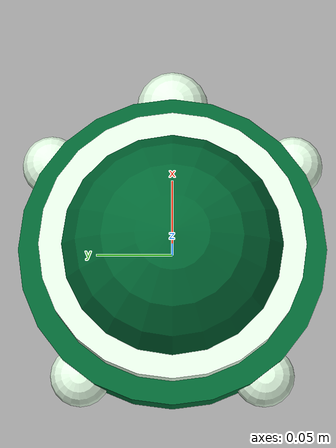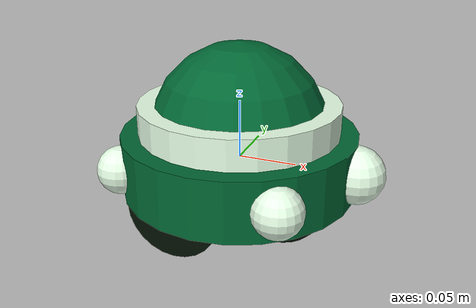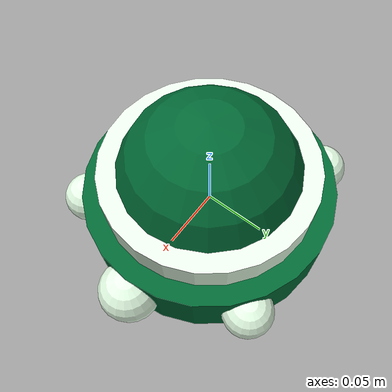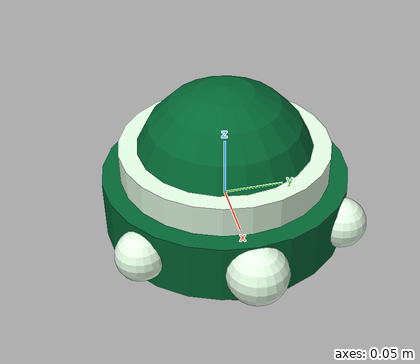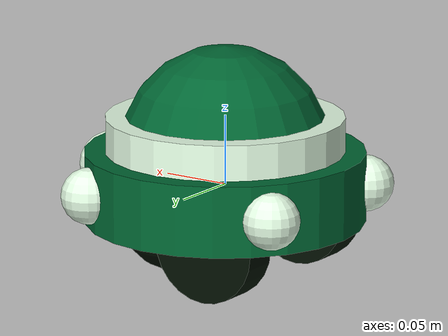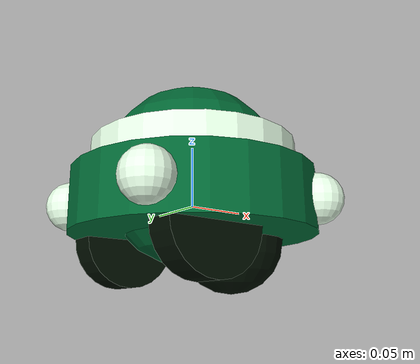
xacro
<?xml version="1.0"?>
<robot name="turtle" xmlns:xacro="http://ros.org/wiki/xacro">

	<!-- Свойства объектов -->

	<!-- Размеры -->

	<xacro:property name="base_radius" value="0.1" />
	<xacro:property name="base_height" value="0.05" />

	<xacro:property name="midbase_radius" value="0.085" />
	<xacro:property name="midbase_height" value="0.025" />

	<xacro:property name="upbase_radius" value="0.075" />

	<xacro:property name="head_radius" value="0.024" />

	<xacro:property name="limb_radius" value="0.02" />
	<xacro:property name="limb_close_off" value="0.06" />
	<xacro:property name="limb_far_off" value="0.08" />

	<xacro:property name="drive_radius" value="0.04" />
	<xacro:property name="drive_height" value="0.025" />
	<xacro:property name="drive_x_off" value="-0.03" />
	<xacro:property name="drive_y_off" value="0.058" />
	<xacro:property name="drive_z_off" value="-0.0246" />

	<xacro:property name="driven_radius" value="0.0446" />
	<xacro:property name="driven_x_off" value="0.04" />

	<!-- Цвета -->

	<material name="green">
		<color rgba="0 0.4 0.2 1"/>
	</material>
	<material name="dark_green">
		<color rgba="0 0.05 0 1"/>
	</material>
	<material name="light_green">
		<color rgba="0.9 1.0 0.9 1"/>
	</material>

	<!-- Joint'ы -->

	<xacro:macro name="joint" params="parent child type xyz rpy">
		<joint name="${parent}_${child}_joint" type="${type}">
			<parent link="${parent}_link"/>
			<child link="${child}_link"/>
			<origin xyz="${xyz}" rpy="${rpy}"/>
		</joint>
	</xacro:macro>

	<xacro:macro name="wheel_joint" params="parent child type xyz rpy axis">
		<joint name="${parent}_${child}_joint" type="${type}">
			<parent link="${parent}_link"/>
			<child link="${child}_link"/>
			<origin xyz="${xyz}" rpy="${rpy}"/>
			<axis xyz="${axis}"/>
		</joint>
	</xacro:macro>

	<!-- Link'и -->

	<xacro:macro name="cylinder_link" params="name radius length color mass">
		<link name="${name}_link">
			<visual>
				<geometry>
					<cylinder radius="${radius}" length="${length}"/>
				</geometry>
				<material name="${color}"/>
			</visual>
			<collision>
				<geometry>
					<cylinder radius="${radius}" length="${length}"/>
				</geometry>
			</collision>
			<inertial>
				<mass value="${mass}"/>
				<inertia ixx="${(mass/12)*((3*radius*radius)+(length*length))}"
						 ixy="0"
						 ixz="0"
						 iyy="${(mass/12)*((3*radius*radius)+(length*length))}"
						 iyz="0"
						 izz="${(mass/2)*(radius*radius)}"/>
			</inertial>
		</link>
	</xacro:macro>

	<xacro:macro name="sphere_link" params="name radius color mass">
		<link name="${name}_link">
			<visual>
				<geometry>
					<sphere radius="${radius}"/>
				</geometry>
				<material name="${color}"/>
			</visual>
			<collision>
				<geometry>
					<sphere radius="${radius}"/>
				</geometry>
			</collision>
			<inertial>
				<mass value="${mass}"/>
				<inertia ixx="${(2/5)*mass*(radius*radius)}"
						 ixy="0"
						 ixz="0"
						 iyy="${(2/5)*mass*(radius*radius)}"
						 iyz="0"
						 izz="${(2/5)*mass*(radius*radius)}"/>
			</inertial>
		</link>
	</xacro:macro>

	<!-- Объекты -->

	<!-- База -->

	<xacro:cylinder_link name="base"
						 radius="0.1" length="0.05"
						 color="green"
						 mass="5" />

	<!-- След от базы и связка с базой -->

	<link name="base_footprint_link"/>

	<xacro:joint parent="base" child="base_footprint"
				 type="fixed"
				 xyz="0 0 ${-((base_height/2)+driven_radius)}" rpy="0 0 0" />

	<!-- Межбаза и связка с базой -->

	<xacro:cylinder_link name="midbase"
						 radius="0.085" length="0.025"
						 color="light_green"
						 mass="3" />

	<xacro:joint parent="base" child="midbase"
				 type="fixed"
				 xyz="0 0 ${(base_height+midbase_height)/2}" rpy="0 0 0" />

	<!-- Надбаза и связка с базой -->

	<xacro:sphere_link name="upbase"
					   radius="${upbase_radius}"
					   color="green"
					   mass="3" />

	<xacro:joint parent="base" child="upbase"
				 type="fixed"
				 xyz="0 0 ${base_height/2}" rpy="0 0 0" />

	<!-- Голова базы и связка с базой -->

	<xacro:sphere_link name="head"
					   radius="${head_radius}"
					   color="light_green"
					   mass="0.5" />

	<xacro:joint parent="base" child="head"
				 type="fixed"
				 xyz="${base_radius} 0 0" rpy="0 0 0" />

	<!-- Лапки базы и связки -->

	<xacro:sphere_link name="right_hand"
					   radius="${limb_radius}"
					   color="light_green"
					   mass="0.25" />
	<xacro:sphere_link name="left_hand"
					   radius="${limb_radius}"
					   color="light_green"
					   mass="0.25" />
	<xacro:sphere_link name="right_leg"
					   radius="${limb_radius}"
					   color="light_green"
					   mass="0.25" />
	<xacro:sphere_link name="left_leg"
					   radius="${limb_radius}"
					   color="light_green"
					   mass="0.25" />

	<xacro:joint parent="base" child="right_hand"
				 type="fixed"
				 xyz="${limb_close_off} ${-limb_far_off} 0" rpy="0 0 0" />
	<xacro:joint parent="base" child="left_hand"
				 type="fixed"
				 xyz="${limb_close_off} ${limb_far_off} 0" rpy="0 0 0" />
	<xacro:joint parent="base" child="right_leg"
				 type="fixed"
				 xyz="${-limb_far_off} ${-limb_close_off} 0" rpy="0 0 0" />
	<xacro:joint parent="base" child="left_leg"
				 type="fixed"
				 xyz="${-limb_far_off} ${limb_close_off} 0" rpy="0 0 0" />

	<!-- Ведущие колеса и связки с базой -->

	<xacro:cylinder_link name="right_drive"
						 radius="0.04" length="0.025"
						 color="dark_green"
						 mass="1" />
	<xacro:cylinder_link name="left_drive"
						 radius="0.04" length="0.025"
						 color="dark_green"
						 mass="1" />

	<xacro:wheel_joint parent="base" child="right_drive"
					   type="continuous"
					   xyz="${drive_x_off} ${-drive_y_off} ${drive_z_off}" rpy="${pi/2} 0 0"
					   axis="0 0 -1" />
	<xacro:wheel_joint parent="base" child="left_drive"
					   type="continuous"
					   xyz="${drive_x_off} ${drive_y_off} ${drive_z_off}" rpy="${pi/2} 0 0"
					   axis="0 0 -1" />

	<!-- Ведомое колесо и связка с базой -->

	<xacro:sphere_link name="driven"
					   radius="${driven_radius}"
					   color="dark_green"
					   mass="2" />

	<xacro:joint parent="base" child="driven"
				 type="fixed"
				 xyz="${driven_x_off} 0 ${-(base_height/2)}" rpy="0 0 0" />

</robot>
